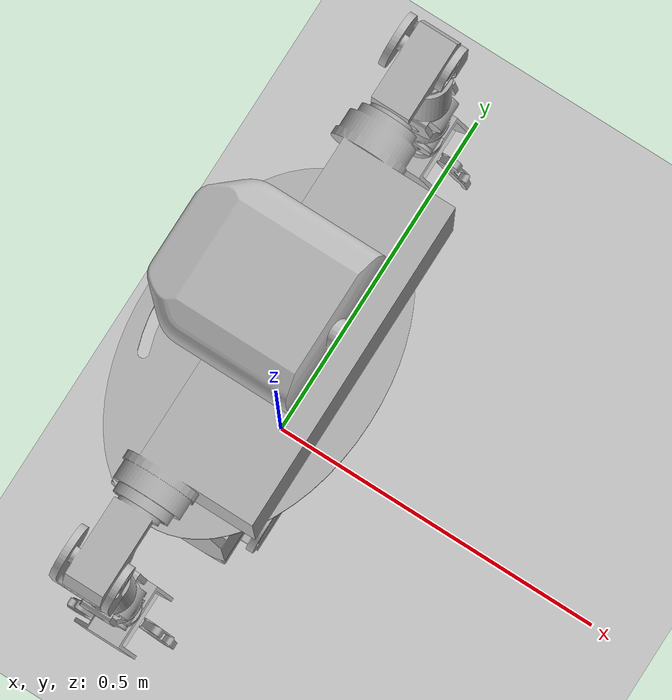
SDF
<?xml version="1.0"?>
<sdf version="1.6">
  <world name="default">

    <!-- Light -->
    <include>
      <uri>model://sun</uri>
    </include>

    <!-- Ground Plane -->
    <include>
      <uri>model://ground_plane</uri>
    </include>

    <!-- Robot -->
    <include>
      <uri>model://teo</uri>
    </include>

   <gravity>0 0 0</gravity>
  </world>
</sdf>
